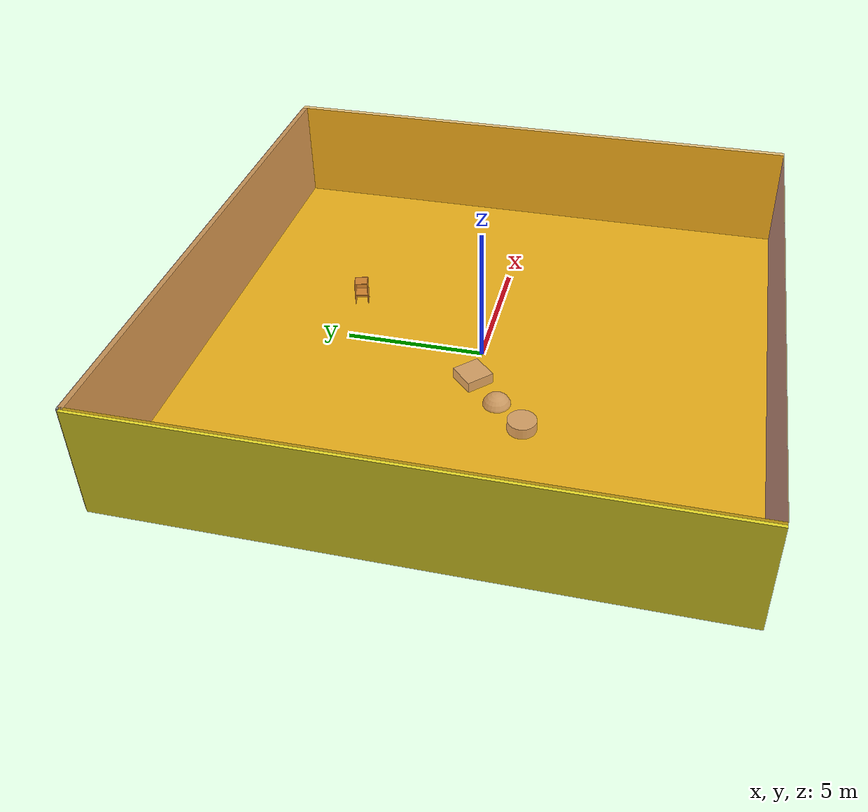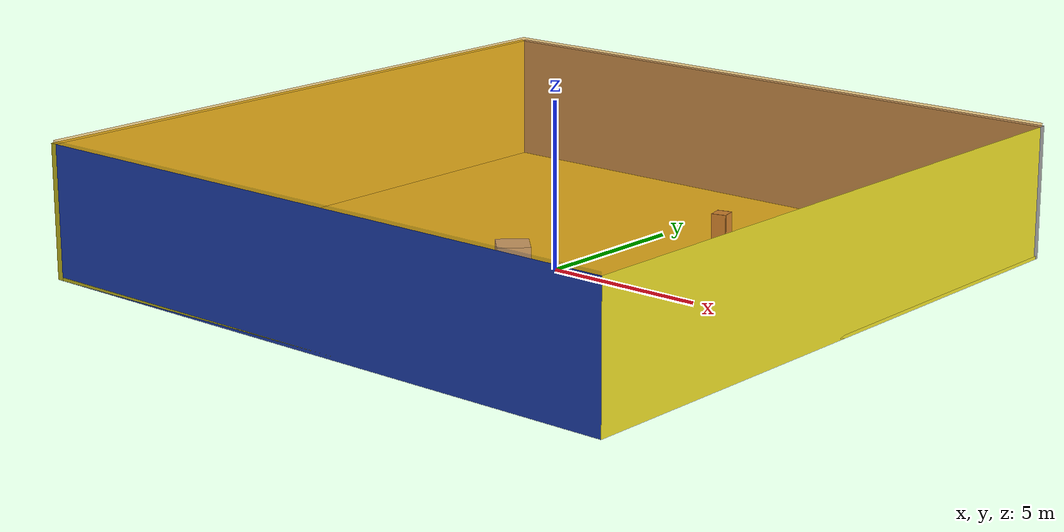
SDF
<sdf version="1.4">
 <world name="default">
  <physics type="ode">
   <max_step_size>0.001</max_step_size>
   <real_time_factor>1</real_time_factor>
   <real_time_update_rate>1000</real_time_update_rate>
   <gravity>0 0 -9.8</gravity>
  </physics>
  <scene><ambient>0.4 0.4 0.4 1</ambient><background>0.7 0.7 0.7 1</background><shadows>1</shadows></scene>
  <model name="Surrounding">
   <static>1</static>
   <link name="Ceiling">
    <collision name="Ceiling_Collision"><geometry><box><size>20 20 0.1</size></box></geometry></collision>
    <visual name="Ceiling_Visual">
     <geometry><box><size>20 20 0.1</size></box></geometry>
     <material>
      <script>
       <uri>file://media/materials/scripts/gazebo.material</uri>
       <name>Gazebo/OrangeTransparent</name>
      </script>
     </material>
    </visual>
    <pose>0 0 4.05 0 0 0</pose>
   </link>
   <link name="Wall_South">
    <collision name="Wall_South_Collision">
     <geometry><box><size>20 0 4</size></box></geometry>
     <pose>0 0 2 0 -0 0</pose>
    </collision>
    <visual name="Wall_South_Visual">
     <pose>0 0 2 0 -0 0</pose>
     <geometry><box><size>20 0 4</size></box></geometry>
     <material>
      <script><uri>file://media/materials/scripts/gazebo.material</uri><name>Gazebo/Blue</name></script>
     </material>
    </visual>
    <velocity_decay><linear>0</linear><angular>0</angular></velocity_decay>
    <pose>0 -10 0 0 -0 0</pose>
   </link>
   <link name="Wall_East">
    <collision name="Wall_21_Collision">
     <geometry><box><size>20 0 4</size></box></geometry>
     <pose>0 0 2 0 -0 0</pose>
    </collision>
    <visual name="Wall_21_Visual">
     <pose>0 0 2 0 -0 0</pose>
     <geometry><box><size>20 0 4</size></box></geometry>
     <material>
      <script><uri>file://media/materials/scripts/gazebo.material</uri><name>Gazebo/Yellow</name></script>
     </material>
    </visual>
    <velocity_decay><linear>0</linear><angular>0</angular></velocity_decay>
    <pose>10 0 0 0 -0 1.5708</pose>
   </link>
   <link name="Wall_North">
    <collision name="Wall_22_Collision">
     <geometry><box><size>20 0.2 4</size></box></geometry>
     <pose>0 0 2 0 -0 0</pose>
    </collision>
    <visual name="Wall_22_Visual">
     <pose>0 0 2 0 -0 0</pose>
     <geometry><box><size>20 0.2 4</size></box></geometry>
     <material>
      <script><uri>file://media/materials/scripts/gazebo.material</uri><name>Gazebo/Grey</name></script>
     </material>
    </visual>
    <velocity_decay><linear>0</linear><angular>0</angular></velocity_decay>
    <pose>0 10 0 0 -0 0</pose>
   </link>
   <link name="Wall_West">
    <collision name="Wall_23_Collision">
     <geometry><box><size>20 0.2 4</size></box></geometry>
     <pose>0 0 2 0 -0 0</pose>
    </collision>
    <visual name="Wall_23_Visual">
     <pose>0 0 2 0 -0 0</pose>
     <geometry><box><size>20 0.2 4</size></box></geometry>
     <material>
      <script><uri>file://media/materials/scripts/gazebo.material</uri><name>Gazebo/Yellow</name></script>
     </material>
    </visual>
    <velocity_decay><linear>0</linear><angular>0</angular></velocity_decay>
    <pose>-10 0 0 0 0 -1.5708</pose>
   </link>
   <link name="Ground_link">
    <collision name="collision">
     <pose>0 0 .05 0 -0 0</pose>
     <geometry><box><size>20 20 0.1</size></box></geometry>
    </collision>
    <visual name="visual">
     <pose>0 0 .05 0 -0 0</pose>
     <geometry><box><size>20 20 0.1</size></box></geometry>
     <material>
      <script><uri>file://media/materials/scripts/gazebo.material</uri><name>Gazebo/YellowGlow</name></script>
     </material>
    </visual>
   </link>
   <static>1</static>
  </model>
  <spherical_coordinates>
   <surface_model>EARTH_WGS84</surface_model>
   <latitude_deg>0</latitude_deg>
   <longitude_deg>0</longitude_deg>
   <elevation>0</elevation>
   <heading_deg>0</heading_deg>
  </spherical_coordinates>
  <light name="lightball_0" type="diffuse">
   <diffuse>0.8 0.8 0.8 1</diffuse>
   <specular>0.2 0.2 0.2 1</specular>
   <attenuation>
    <range>100</range>
    <constant>0.7</constant>
    <linear>0.01</linear>
    <quadratic>0.001</quadratic>
   </attenuation>
   <direction>-0.5 0.1 -0.9</direction>
   <pose>-9.65908260612 2.97673788531 2.57096581028 0 0 0</pose>
  </light>
  <light name="lightball_1" type="diffuse">
   <diffuse>0.8 0.8 0.8 1</diffuse>
   <specular>0.2 0.2 0.2 1</specular>
   <attenuation>
    <range>100</range>
    <constant>0.7</constant>
    <linear>0.01</linear>
    <quadratic>0.001</quadratic>
   </attenuation>
   <direction>-0.5 0.1 -0.9</direction>
   <pose>-4.17199644061 3.97927052413 2.13100738302 0 0 0</pose>
  </light>
  <light name="lightball_2" type="diffuse">
   <diffuse>0.8 0.8 0.8 1</diffuse>
   <specular>0.2 0.2 0.2 1</specular>
   <attenuation>
    <range>100</range>
    <constant>0.7</constant>
    <linear>0.01</linear>
    <quadratic>0.001</quadratic>
   </attenuation>
   <direction>-0.5 0.1 -0.9</direction>
   <pose>1.61221762144 -0.762035338655 0.942503609425 0 0 0</pose>
  </light>
  <light name="lightball_3" type="diffuse">
   <diffuse>0.8 0.8 0.8 1</diffuse>
   <specular>0.2 0.2 0.2 1</specular>
   <attenuation>
    <range>100</range>
    <constant>0.7</constant>
    <linear>0.01</linear>
    <quadratic>0.001</quadratic>
   </attenuation>
   <direction>-0.5 0.1 -0.9</direction>
   <pose>-0.470725019958 -5.9948924531 2.73195944515 0 0 0</pose>
  </light>
  <light name="lightball_4" type="diffuse">
   <diffuse>0.8 0.8 0.8 1</diffuse>
   <specular>0.2 0.2 0.2 1</specular>
   <attenuation>
    <range>100</range>
    <constant>0.7</constant>
    <linear>0.01</linear>
    <quadratic>0.001</quadratic>
   </attenuation>
   <direction>-0.5 0.1 -0.9</direction>
   <pose>-3.65844540113 2.34596272142 3.55995702649 0 0 0</pose>
  </light>
  <include>
   <uri>model://construction_cone</uri>
   <pose>-8.27801117715 -8.51784811801 0 0 0 1.68557396862</pose>
  </include>
  <include>
   <uri>model://textured_shapes</uri>
   <pose>-2.67325667771 -1.08725972706 0 0 0 2.36046916493</pose>
  </include>
  <include><uri>model://cabinet</uri><pose>2.10535985766 5.16877913963 0 0 0 0.238029552421</pose></include>
 </world>
</sdf>

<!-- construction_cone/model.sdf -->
<sdf version="1.5">
  <model name="Construction Cone">
    <link name="link">
      <collision name="collision">
        <geometry>
          <mesh>
            <scale>10 10 10</scale>
            <uri>file://isr-testbed/construction_cone/meshes/construction_cone.dae</uri>
          </mesh>
        </geometry>
      </collision>
      <visual name="visual">
        <geometry>
          <mesh>
            <scale>10 10 10</scale>
            <uri>file://isr-testbed/construction_cone/meshes/construction_cone.dae</uri>
          </mesh>
        </geometry>
      </visual>
    </link>
  </model>
</sdf>

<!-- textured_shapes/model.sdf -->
<sdf version="1.6">
  <model name="textured_shapes">
    <pose>0 0 0.5 0 0 0</pose>
    <link name="box">
      <pose>0 -1.5 0 0 0 0</pose>
      <collision name="collision">
        <geometry>
          <box>
            <size>1 1 1</size>
          </box>
        </geometry>
      </collision>
      <visual name="visual">
        <geometry>
          <box>
            <size>1 1 1</size>
          </box>
        </geometry>
        <material>
          <script>
            <uri>model://../model_source/models/textured_shapes/materials/scripts</uri>
            <uri>model://../model_source/models/textured_shapes/materials/textures</uri>
            <name>TexturedShape/Squares</name>
          </script>
        </material>
      </visual>
    </link>
    <link name="sphere">
      <collision name="collision">
        <geometry>
          <sphere>
            <radius>0.5</radius>
          </sphere>
        </geometry>
      </collision>
      <visual name="visual">
        <geometry>
          <sphere>
            <radius>0.5</radius>
          </sphere>
        </geometry>
        <material>
          <script>
            <uri>model://../model_source/models/textured_shapes/materials/scripts</uri>
            <uri>model://../model_source/models/textured_shapes/materials/textures</uri>
            <name>TexturedShape/Squares</name>
          </script>
        </material>
      </visual>
    </link>
    <link name="cylinder">
      <pose>0 1.5 0 0 0 0</pose>
      <collision name="collision">
        <geometry>
          <cylinder>
            <radius>0.5</radius>
            <length>1</length>
          </cylinder>
        </geometry>
      </collision>
      <visual name="visual">
        <geometry>
          <cylinder>
            <radius>0.5</radius>
            <length>1</length>
          </cylinder>
        </geometry>
        <material>
          <script>
            <uri>model://../model_source/models/textured_shapes/materials/scripts</uri>
            <uri>model://../model_source/models/textured_shapes/materials/textures</uri>
            <name>TexturedShape/Squares</name>
          </script>
        </material>
      </visual>
    </link>
  </model>
</sdf>

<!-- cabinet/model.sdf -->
<sdf version="1.5">
  <model name="cabinet">
    <static>true</static>
    <link name="cabinet_bottom_plate">
      <inertial>
        <pose>0 0 -1 0 0 0</pose>
        <inertia>
          <ixx>2.050000</ixx>
          <ixy>0</ixy>
          <ixz>0</ixz>
          <iyy>2.050000</iyy>
          <iyz>0</iyz>
          <izz>2.050000</izz>
        </inertia>
        <mass>25.000000</mass>
      </inertial>
      <collision name="cabinet_bottom_plate_geom">
        <pose>0 0 0.010000 0 0 0</pose>
        <geometry>
          <box>
            <size>0.450000 0.450000 0.020000</size>
          </box>
        </geometry>
      </collision>
      <visual name="cabinet_bottom_plate_geom_visual">
        <pose>0 0 0.010000 0 0 0</pose>
        <geometry>
          <box>
            <size>0.450000 0.450000 0.020000</size>
          </box>
        </geometry>
        <material>
          <script>
            <uri>model://media/materials/scripts/gazebo.material</uri>
            <name>Gazebo/Wood</name>
          </script>
        </material>
      </visual>
      <collision name="cabinet_bottom_plate_geom_cabinet_back_plate">
        <pose>0.235000 0 0.510000 0 0 0</pose>
        <geometry>
          <box>
            <size>0.020000 0.450000 1.020000</size>
          </box>
        </geometry>
      </collision>
      <visual name="cabinet_bottom_plate_geom_cabinet_back_plate_visual">
        <pose>0.235000 0 0.510000 0 0 0</pose>
        <geometry>
          <box>
            <size>0.020000 0.450000 1.020000</size>
          </box>
        </geometry>
        <material>
          <script>
            <uri>model://media/materials/scripts/gazebo.material</uri>
            <name>Gazebo/Wood</name>
          </script>
        </material>
      </visual>
      <collision name="cabinet_bottom_plate_geom_cabinet_left_plate">
        <pose>0 0.235000 0.510000 0 0 0</pose>
        <geometry>
          <box>
            <size>0.450000 0.020000 1.020000</size>
          </box>
        </geometry>
      </collision>
      <visual name="cabinet_bottom_plate_geom_cabinet_left_plate_visual">
        <pose>0 0.235000 0.510000 0 0 0</pose>
        <geometry>
          <box>
            <size>0.450000 0.020000 1.020000</size>
          </box>
        </geometry>
        <material>
          <script>
            <uri>model://media/materials/scripts/gazebo.material</uri>
            <name>Gazebo/Wood</name>
          </script>
        </material>
      </visual>
      <collision name="cabinet_bottom_plate_geom_cabinet_middle_plate">
        <pose>0 0 0.510000 0 0 0</pose>
        <geometry>
          <box>
            <size>0.450000 0.450000 0.020000</size>
          </box>
        </geometry>
      </collision>
      <visual name="cabinet_bottom_plate_geom_cabinet_middle_plate_visual">
        <pose>0 0 0.510000 0 0 0</pose>
        <geometry>
          <box>
            <size>0.450000 0.450000 0.020000</size>
          </box>
        </geometry>
        <material>
          <script>
            <uri>model://media/materials/scripts/gazebo.material</uri>
            <name>Gazebo/Wood</name>
          </script>
        </material>
      </visual>
      <collision name="cabinet_bottom_plate_geom_cabinet_right_plate">
        <pose>0 -0.235000 0.510000 0 0 0</pose>
        <geometry>
          <box>
            <size>0.450000 0.020000 1.020000</size>
          </box>
        </geometry>
      </collision>
      <visual name="cabinet_bottom_plate_geom_cabinet_right_plate_visual">
        <pose>0 -0.235000 0.510000 0 0 0</pose>
        <geometry>
          <box>
            <size>0.450000 0.020000 1.020000</size>
          </box>
        </geometry>
        <material>
          <script>
            <uri>model://media/materials/scripts/gazebo.material</uri>
            <name>Gazebo/Wood</name>
          </script>
        </material>
      </visual>
      <collision name="cabinet_bottom_plate_geom_cabinet_top_plate">
        <pose>0 0 1.010000 0 0 0</pose>
        <geometry>
          <box>
            <size>0.450000 0.450000 0.020000</size>
          </box>
        </geometry>
      </collision>
      <visual name="cabinet_bottom_plate_geom_cabinet_top_plate_visual">
        <pose>0 0 1.010000 0 0 0</pose>
        <geometry>
          <box>
            <size>0.450000 0.450000 0.020000</size>
          </box>
        </geometry>
        <material>
          <script>
            <uri>model://media/materials/scripts/gazebo.material</uri>
            <name>Gazebo/Wood</name>
          </script>
        </material>
      </visual>
    </link>
  </model>
</sdf>
